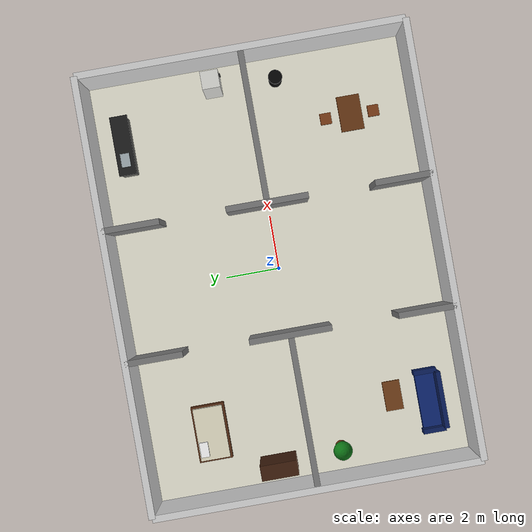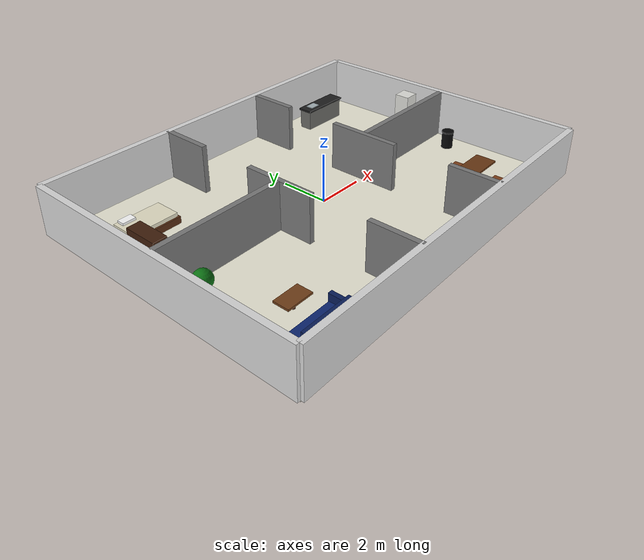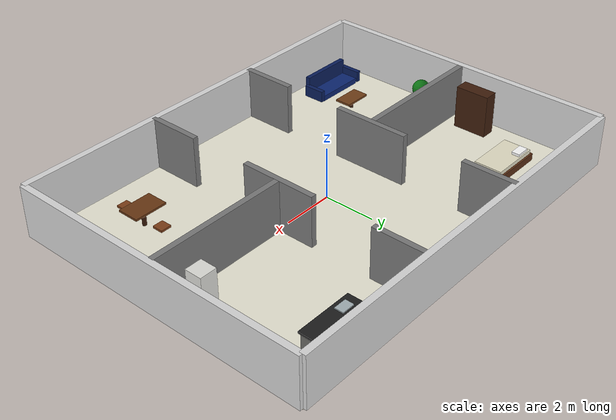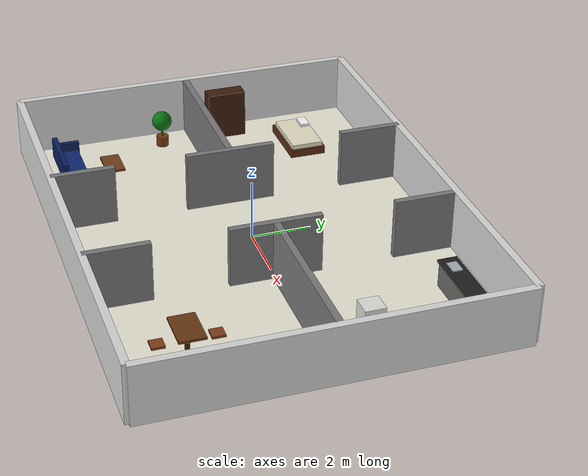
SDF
<?xml version="1.0" ?>
<sdf version="1.6">
  <world name="apartment_world">

    <!-- ================= WORLD SETTINGS ================= -->
    <physics name="default_physics" type="ode">
      <max_step_size>0.001</max_step_size>
      <real_time_factor>1.0</real_time_factor>
      <real_time_update_rate>1000</real_time_update_rate>
    </physics>

    <include>
      <uri>model://sun</uri>
    </include>

    <!-- ================= FLOOR ================= -->
    <model name="floor">
      <static>true</static>
      <link name="link">
        <pose>0 0 -0.025 0 0 0</pose>

        <collision name="collision">
          <geometry>
            <box>
              <size>16 12 0.05</size>
            </box>
          </geometry>
        </collision>

        <visual name="visual">
          <geometry>
            <box>
              <size>16 12 0.05</size>
            </box>
          </geometry>
          <material>
            <ambient>0.92 0.91 0.84 1</ambient>
            <diffuse>0.92 0.91 0.84 1</diffuse>
          </material>
        </visual>
      </link>
    </model>

    <!-- ================= OUTER WALLS ================= -->
    <model name="outer_walls">
      <static>true</static>
      <link name="link">

        <!-- Top wall -->
        <collision name="top_collision">
          <pose>0 6 1 0 0 0</pose>
          <geometry><box><size>16 0.25 2</size></box></geometry>
        </collision>
        <visual name="top_visual">
          <pose>0 6 1 0 0 0</pose>
          <geometry><box><size>16 0.25 2</size></box></geometry>
          <material><ambient>0.85 0.85 0.85 1</ambient><diffuse>0.85 0.85 0.85 1</diffuse></material>
        </visual>

        <!-- Bottom wall -->
        <collision name="bottom_collision">
          <pose>0 -6 1 0 0 0</pose>
          <geometry><box><size>16 0.25 2</size></box></geometry>
        </collision>
        <visual name="bottom_visual">
          <pose>0 -6 1 0 0 0</pose>
          <geometry><box><size>16 0.25 2</size></box></geometry>
          <material><ambient>0.85 0.85 0.85 1</ambient><diffuse>0.85 0.85 0.85 1</diffuse></material>
        </visual>

        <!-- Left wall -->
        <collision name="left_collision">
          <pose>-8 0 1 0 0 0</pose>
          <geometry><box><size>0.25 12 2</size></box></geometry>
        </collision>
        <visual name="left_visual">
          <pose>-8 0 1 0 0 0</pose>
          <geometry><box><size>0.25 12 2</size></box></geometry>
          <material><ambient>0.85 0.85 0.85 1</ambient><diffuse>0.85 0.85 0.85 1</diffuse></material>
        </visual>

        <!-- Right wall -->
        <collision name="right_collision">
          <pose>8 0 1 0 0 0</pose>
          <geometry><box><size>0.25 12 2</size></box></geometry>
        </collision>
        <visual name="right_visual">
          <pose>8 0 1 0 0 0</pose>
          <geometry><box><size>0.25 12 2</size></box></geometry>
          <material><ambient>0.85 0.85 0.85 1</ambient><diffuse>0.85 0.85 0.85 1</diffuse></material>
        </visual>

      </link>
    </model>

    <model name="inner_walls_with_doors">
      <static>true</static>
      <link name="link">

        <!-- ========= LEFT VERTICAL WALL x = -2.4 WITH TWO DOORS ========= -->
        <!-- Top segment -->
        <collision name="left_v_top_collision">
          <pose>-2.4 4.95 1 0 0 0</pose>
          <geometry><box><size>0.22 2.1 2</size></box></geometry>
        </collision>
        <visual name="left_v_top_visual">
          <pose>-2.4 4.95 1 0 0 0</pose>
          <geometry><box><size>0.22 2.1 2</size></box></geometry>
          <material><ambient>0.48 0.48 0.48 1</ambient><diffuse>0.48 0.48 0.48 1</diffuse></material>
        </visual>

        <!-- Middle segment between top and bottom doors -->
        <collision name="left_v_mid_collision">
          <pose>-2.4 0 1 0 0 0</pose>
          <geometry><box><size>0.22 3.0 2</size></box></geometry>
        </collision>
        <visual name="left_v_mid_visual">
          <pose>-2.4 0 1 0 0 0</pose>
          <geometry><box><size>0.22 3.0 2</size></box></geometry>
          <material><ambient>0.48 0.48 0.48 1</ambient><diffuse>0.48 0.48 0.48 1</diffuse></material>
        </visual>

        <!-- Bottom segment -->
        <collision name="left_v_bottom_collision">
          <pose>-2.4 -4.95 1 0 0 0</pose>
          <geometry><box><size>0.22 2.1 2</size></box></geometry>
        </collision>
        <visual name="left_v_bottom_visual">
          <pose>-2.4 -4.95 1 0 0 0</pose>
          <geometry><box><size>0.22 2.1 2</size></box></geometry>
          <material><ambient>0.48 0.48 0.48 1</ambient><diffuse>0.48 0.48 0.48 1</diffuse></material>
        </visual>

        <!-- ========= RIGHT VERTICAL WALL x = 2.4 WITH TWO DOORS ========= -->
        <collision name="right_v_top_collision">
          <pose>2.4 4.95 1 0 0 0</pose>
          <geometry><box><size>0.22 2.1 2</size></box></geometry>
        </collision>
        <visual name="right_v_top_visual">
          <pose>2.4 4.95 1 0 0 0</pose>
          <geometry><box><size>0.22 2.1 2</size></box></geometry>
          <material><ambient>0.48 0.48 0.48 1</ambient><diffuse>0.48 0.48 0.48 1</diffuse></material>
        </visual>

        <collision name="right_v_mid_collision">
          <pose>2.4 0 1 0 0 0</pose>
          <geometry><box><size>0.22 3.0 2</size></box></geometry>
        </collision>
        <visual name="right_v_mid_visual">
          <pose>2.4 0 1 0 0 0</pose>
          <geometry><box><size>0.22 3.0 2</size></box></geometry>
          <material><ambient>0.48 0.48 0.48 1</ambient><diffuse>0.48 0.48 0.48 1</diffuse></material>
        </visual>

        <collision name="right_v_bottom_collision">
          <pose>2.4 -4.95 1 0 0 0</pose>
          <geometry><box><size>0.22 2.1 2</size></box></geometry>
        </collision>
        <visual name="right_v_bottom_visual">
          <pose>2.4 -4.95 1 0 0 0</pose>
          <geometry><box><size>0.22 2.1 2</size></box></geometry>
          <material><ambient>0.48 0.48 0.48 1</ambient><diffuse>0.48 0.48 0.48 1</diffuse></material>
        </visual>

        <!-- ========= LEFT SIDE HORIZONTAL DIVIDER y = 0 ========= -->
        <!-- This separates top-left and bottom-left rooms, but does not block central hallway -->
        <collision name="left_h_collision">
          <pose>-5.2 0 1 0 0 0</pose>
          <geometry><box><size>5.4 0.22 2</size></box></geometry>
        </collision>
        <visual name="left_h_visual">
          <pose>-5.2 0 1 0 0 0</pose>
          <geometry><box><size>5.4 0.22 2</size></box></geometry>
          <material><ambient>0.48 0.48 0.48 1</ambient><diffuse>0.48 0.48 0.48 1</diffuse></material>
        </visual>

        <!-- ========= RIGHT SIDE HORIZONTAL DIVIDER y = 0 ========= -->
        <collision name="right_h_collision">
          <pose>5.2 0 1 0 0 0</pose>
          <geometry><box><size>5.4 0.22 2</size></box></geometry>
        </collision>
        <visual name="right_h_visual">
          <pose>5.2 0 1 0 0 0</pose>
          <geometry><box><size>5.4 0.22 2</size></box></geometry>
          <material><ambient>0.48 0.48 0.48 1</ambient><diffuse>0.48 0.48 0.48 1</diffuse></material>
        </visual>

      </link>
    </model>

    <!-- ================= TOP LEFT: BEDROOM ================= -->
    <model name="bed_realistic">
      <static>true</static>
      <pose>-5.6 3.55 0 0 0 0</pose>
      <link name="link">

        <collision name="frame_collision">
          <pose>0 0 0.18 0 0 0</pose>
          <geometry><box><size>2.1 1.25 0.28</size></box></geometry>
        </collision>
        <visual name="frame_visual">
          <pose>0 0 0.18 0 0 0</pose>
          <geometry><box><size>2.1 1.25 0.28</size></box></geometry>
          <material><ambient>0.35 0.18 0.08 1</ambient><diffuse>0.35 0.18 0.08 1</diffuse></material>
        </visual>

        <collision name="mattress_collision">
          <pose>0 0 0.39 0 0 0</pose>
          <geometry><box><size>1.95 1.1 0.18</size></box></geometry>
        </collision>
        <visual name="mattress_visual">
          <pose>0 0 0.39 0 0 0</pose>
          <geometry><box><size>1.95 1.1 0.18</size></box></geometry>
          <material><ambient>0.90 0.88 0.78 1</ambient><diffuse>0.90 0.88 0.78 1</diffuse></material>
        </visual>

        <visual name="pillow_visual">
          <pose>-0.55 0.35 0.54 0 0 0</pose>
          <geometry><box><size>0.55 0.32 0.10</size></box></geometry>
          <material><ambient>1 1 1 1</ambient><diffuse>1 1 1 1</diffuse></material>
        </visual>

      </link>
    </model>

    <model name="wardrobe_realistic">
      <static>true</static>
      <pose>-7.15 1.25 0 0 0 0</pose>
      <link name="link">
        <collision name="body_collision">
          <pose>0 0 0.85 0 0 0</pose>
          <geometry><box><size>0.55 1.35 1.7</size></box></geometry>
        </collision>
        <visual name="body_visual">
          <pose>0 0 0.85 0 0 0</pose>
          <geometry><box><size>0.55 1.35 1.7</size></box></geometry>
          <material><ambient>0.25 0.12 0.05 1</ambient><diffuse>0.25 0.12 0.05 1</diffuse></material>
        </visual>
      </link>
    </model>

    <!-- ================= BOTTOM LEFT: LIVING ROOM ================= -->
    <model name="sofa_realistic">
      <static>true</static>
      <pose>-5.8 -4.65 0 0 0 0</pose>
      <link name="link">

        <collision name="seat_collision">
          <pose>0 0 0.28 0 0 0</pose>
          <geometry><box><size>2.0 0.75 0.22</size></box></geometry>
        </collision>
        <visual name="seat_visual">
          <pose>0 0 0.28 0 0 0</pose>
          <geometry><box><size>2.0 0.75 0.22</size></box></geometry>
          <material><ambient>0.05 0.15 0.45 1</ambient><diffuse>0.05 0.15 0.45 1</diffuse></material>
        </visual>

        <collision name="back_collision">
          <pose>0 -0.42 0.62 0 0 0</pose>
          <geometry><box><size>2.1 0.18 0.72</size></box></geometry>
        </collision>
        <visual name="back_visual">
          <pose>0 -0.42 0.62 0 0 0</pose>
          <geometry><box><size>2.1 0.18 0.72</size></box></geometry>
          <material><ambient>0.04 0.12 0.36 1</ambient><diffuse>0.04 0.12 0.36 1</diffuse></material>
        </visual>

        <collision name="left_arm_collision">
          <pose>-1.1 0 0.45 0 0 0</pose>
          <geometry><box><size>0.18 0.85 0.45</size></box></geometry>
        </collision>
        <visual name="left_arm_visual">
          <pose>-1.1 0 0.45 0 0 0</pose>
          <geometry><box><size>0.18 0.85 0.45</size></box></geometry>
          <material><ambient>0.04 0.12 0.36 1</ambient><diffuse>0.04 0.12 0.36 1</diffuse></material>
        </visual>

        <collision name="right_arm_collision">
          <pose>1.1 0 0.45 0 0 0</pose>
          <geometry><box><size>0.18 0.85 0.45</size></box></geometry>
        </collision>
        <visual name="right_arm_visual">
          <pose>1.1 0 0.45 0 0 0</pose>
          <geometry><box><size>0.18 0.85 0.45</size></box></geometry>
          <material><ambient>0.04 0.12 0.36 1</ambient><diffuse>0.04 0.12 0.36 1</diffuse></material>
        </visual>

      </link>
    </model>

    <model name="coffee_table_realistic">
      <static>true</static>
      <pose>-5.4 -3.35 0 0 0 0</pose>
      <link name="link">

        <collision name="top_collision">
          <pose>0 0 0.42 0 0 0</pose>
          <geometry><box><size>1.1 0.65 0.08</size></box></geometry>
        </collision>
        <visual name="top_visual">
          <pose>0 0 0.42 0 0 0</pose>
          <geometry><box><size>1.1 0.65 0.08</size></box></geometry>
          <material><ambient>0.45 0.25 0.10 1</ambient><diffuse>0.45 0.25 0.10 1</diffuse></material>
        </visual>

        <collision name="leg_collision">
          <pose>0 0 0.20 0 0 0</pose>
          <geometry><cylinder><radius>0.07</radius><length>0.4</length></cylinder></geometry>
        </collision>
        <visual name="leg_visual">
          <pose>0 0 0.20 0 0 0</pose>
          <geometry><cylinder><radius>0.07</radius><length>0.4</length></cylinder></geometry>
          <material><ambient>0.25 0.12 0.05 1</ambient><diffuse>0.25 0.12 0.05 1</diffuse></material>
        </visual>

      </link>
    </model>

    <model name="plant_realistic">
      <static>true</static>
      <pose>-7.0 -1.15 0 0 0 0</pose>
      <link name="link">

        <collision name="pot_collision">
          <pose>0 0 0.18 0 0 0</pose>
          <geometry><cylinder><radius>0.22</radius><length>0.36</length></cylinder></geometry>
        </collision>
        <visual name="pot_visual">
          <pose>0 0 0.18 0 0 0</pose>
          <geometry><cylinder><radius>0.22</radius><length>0.36</length></cylinder></geometry>
          <material><ambient>0.45 0.22 0.08 1</ambient><diffuse>0.45 0.22 0.08 1</diffuse></material>
        </visual>

        <visual name="stem_visual">
          <pose>0 0 0.55 0 0 0</pose>
          <geometry><cylinder><radius>0.035</radius><length>0.7</length></cylinder></geometry>
          <material><ambient>0.1 0.35 0.1 1</ambient><diffuse>0.1 0.35 0.1 1</diffuse></material>
        </visual>

        <visual name="leaves_visual">
          <pose>0 0 0.95 0 0 0</pose>
          <geometry><sphere><radius>0.35</radius></sphere></geometry>
          <material><ambient>0.05 0.45 0.08 1</ambient><diffuse>0.05 0.45 0.08 1</diffuse></material>
        </visual>

      </link>
    </model>

    <!-- ================= TOP RIGHT: KITCHEN ================= -->
    <model name="kitchen_counter_realistic">
      <static>true</static>
      <pose>5.45 4.85 0 0 0 0</pose>
      <link name="link">

        <collision name="cabinet_collision">
          <pose>0 0 0.42 0 0 0</pose>
          <geometry><box><size>2.1 0.55 0.84</size></box></geometry>
        </collision>
        <visual name="cabinet_visual">
          <pose>0 0 0.42 0 0 0</pose>
          <geometry><box><size>2.1 0.55 0.84</size></box></geometry>
          <material><ambient>0.42 0.42 0.40 1</ambient><diffuse>0.42 0.42 0.40 1</diffuse></material>
        </visual>

        <collision name="countertop_collision">
          <pose>0 0 0.88 0 0 0</pose>
          <geometry><box><size>2.2 0.65 0.08</size></box></geometry>
        </collision>
        <visual name="countertop_visual">
          <pose>0 0 0.88 0 0 0</pose>
          <geometry><box><size>2.2 0.65 0.08</size></box></geometry>
          <material><ambient>0.12 0.12 0.12 1</ambient><diffuse>0.12 0.12 0.12 1</diffuse></material>
        </visual>

        <visual name="sink_visual">
          <pose>-0.55 0 0.94 0 0 0</pose>
          <geometry><box><size>0.5 0.34 0.04</size></box></geometry>
          <material><ambient>0.65 0.70 0.72 1</ambient><diffuse>0.65 0.70 0.72 1</diffuse></material>
        </visual>

      </link>
    </model>

    <model name="fridge_realistic">
      <static>true</static>
      <pose>7.1 1.25 0 0 0 0</pose>
      <link name="link">

        <collision name="body_collision">
          <pose>0 0 0.9 0 0 0</pose>
          <geometry><box><size>0.65 0.65 1.8</size></box></geometry>
        </collision>
        <visual name="body_visual">
          <pose>0 0 0.9 0 0 0</pose>
          <geometry><box><size>0.65 0.65 1.8</size></box></geometry>
          <material><ambient>0.88 0.88 0.86 1</ambient><diffuse>0.88 0.88 0.86 1</diffuse></material>
        </visual>

        <visual name="handle_visual">
          <pose>0.26 -0.35 0.95 0 0 0</pose>
          <geometry><box><size>0.04 0.04 0.55</size></box></geometry>
          <material><ambient>0.2 0.2 0.2 1</ambient><diffuse>0.2 0.2 0.2 1</diffuse></material>
        </visual>

      </link>
    </model>

    <!-- ================= BOTTOM RIGHT: DINING / UTILITY ================= -->
    <model name="dining_table_realistic">
      <static>true</static>
      <pose>5.2 -3.6 0 0 0 0</pose>
      <link name="link">

        <collision name="top_collision">
          <pose>0 0 0.72 0 0 0</pose>
          <geometry><box><size>1.3 0.85 0.08</size></box></geometry>
        </collision>
        <visual name="top_visual">
          <pose>0 0 0.72 0 0 0</pose>
          <geometry><box><size>1.3 0.85 0.08</size></box></geometry>
          <material><ambient>0.42 0.22 0.08 1</ambient><diffuse>0.42 0.22 0.08 1</diffuse></material>
        </visual>

        <collision name="leg_collision">
          <pose>0 0 0.35 0 0 0</pose>
          <geometry><cylinder><radius>0.08</radius><length>0.7</length></cylinder></geometry>
        </collision>
        <visual name="leg_visual">
          <pose>0 0 0.35 0 0 0</pose>
          <geometry><cylinder><radius>0.08</radius><length>0.7</length></cylinder></geometry>
          <material><ambient>0.25 0.12 0.05 1</ambient><diffuse>0.25 0.12 0.05 1</diffuse></material>
        </visual>

      </link>
    </model>

    <model name="chair_1">
      <static>true</static>
      <pose>5.2 -4.5 0 0 0 0</pose>
      <link name="link">
        <collision name="seat_collision">
          <pose>0 0 0.35 0 0 0</pose>
          <geometry><box><size>0.42 0.42 0.08</size></box></geometry>
        </collision>
        <visual name="seat_visual">
          <pose>0 0 0.35 0 0 0</pose>
          <geometry><box><size>0.42 0.42 0.08</size></box></geometry>
          <material><ambient>0.50 0.25 0.10 1</ambient><diffuse>0.50 0.25 0.10 1</diffuse></material>
        </visual>
      </link>
    </model>

    <model name="chair_2">
      <static>true</static>
      <pose>5.2 -2.7 0 0 0 3.14159</pose>
      <link name="link">
        <collision name="seat_collision">
          <pose>0 0 0.35 0 0 0</pose>
          <geometry><box><size>0.42 0.42 0.08</size></box></geometry>
        </collision>
        <visual name="seat_visual">
          <pose>0 0 0.35 0 0 0</pose>
          <geometry><box><size>0.42 0.42 0.08</size></box></geometry>
          <material><ambient>0.50 0.25 0.10 1</ambient><diffuse>0.50 0.25 0.10 1</diffuse></material>
        </visual>
      </link>
    </model>

    <model name="dustbin_realistic">
      <static>true</static>
      <pose>7.0 -1.1 0 0 0 0</pose>
      <link name="link">

        <collision name="bin_collision">
          <pose>0 0 0.35 0 0 0</pose>
          <geometry><cylinder><radius>0.24</radius><length>0.7</length></cylinder></geometry>
        </collision>
        <visual name="bin_visual">
          <pose>0 0 0.35 0 0 0</pose>
          <geometry><cylinder><radius>0.24</radius><length>0.7</length></cylinder></geometry>
          <material><ambient>0.04 0.04 0.04 1</ambient><diffuse>0.04 0.04 0.04 1</diffuse></material>
        </visual>

        <visual name="lid_visual">
          <pose>0 0 0.73 0 0 0</pose>
          <geometry><cylinder><radius>0.26</radius><length>0.05</length></cylinder></geometry>
          <material><ambient>0.02 0.02 0.02 1</ambient><diffuse>0.02 0.02 0.02 1</diffuse></material>
        </visual>

      </link>
    </model>

  </world>
</sdf>
